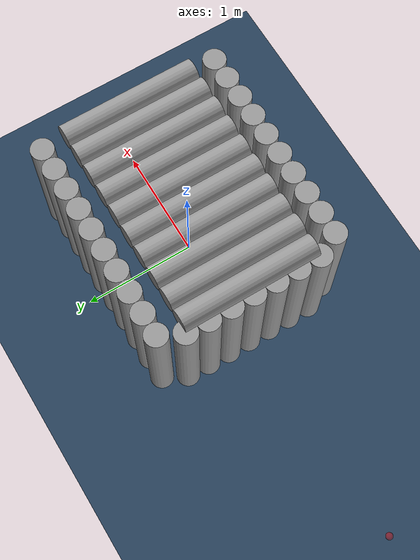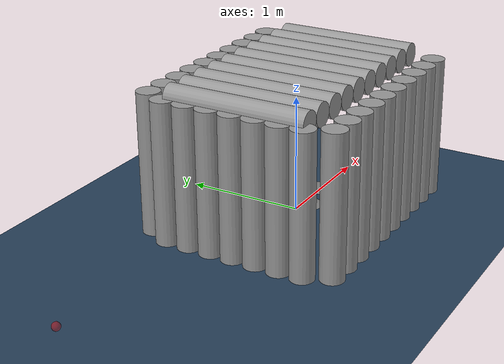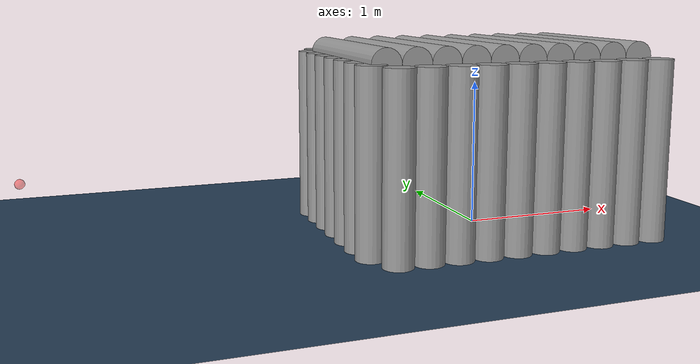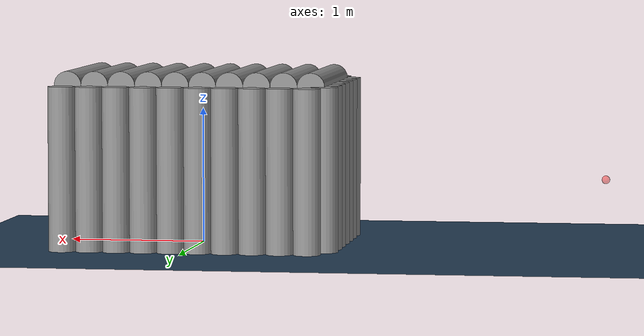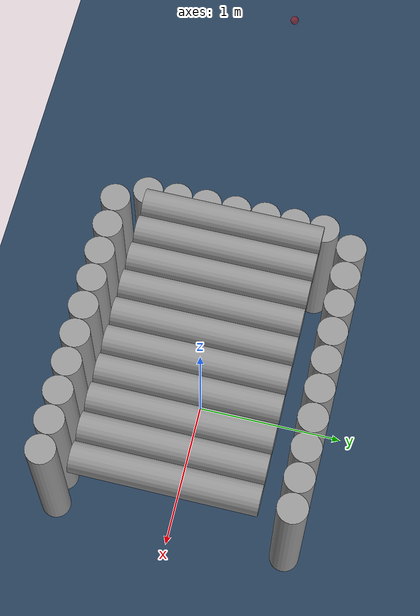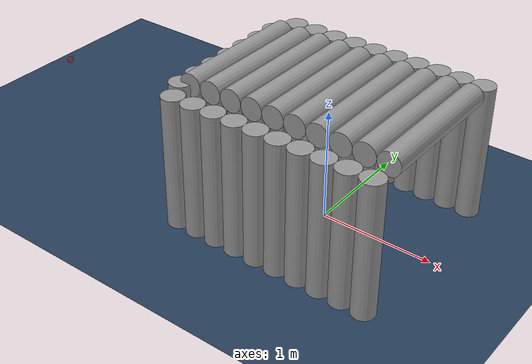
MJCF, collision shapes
<mujoco model="Skydio X2 scene">
  <include file="x2.xml"/>

  <!-- Target sphere -->
  <worldbody>
    <body name="goal" mocap="true" pos="-3 0 0.5">
      <site type="sphere" size=".03" rgba="1 0 0 0.4"  />
    </body>
  </worldbody>

  <!-- Obstacles -->
  <worldbody>
    <body name="frontwall" pos="-1 0 0 " quat="0.707 0 0 0.707">
      <geom name="f0" size="0.1 0.6" type="cylinder" pos="-0.6 0 0.6" rgba ="0.6 0.6 0.6 0.5"/>
      <geom name="f1" size="0.1 0.6" type="cylinder" pos="-0.4 0 0.6" rgba ="0.6 0.6 0.6 0.5"/>
      <geom name="f2" size="0.1 0.6" type="cylinder" pos="-0.2 0 0.6" rgba ="0.6 0.6 0.6 0.5"/>
      <geom name="f3" size="0.1 0.6" type="cylinder" pos="0 0 0.6" rgba ="0.6 0.6 0.6 0.5"/>
      <geom name="f4" size="0.1 0.6" type="cylinder" pos="0.2 0 0.6" rgba ="0.6 0.6 0.6 0.5"/>
      <geom name="f5" size="0.1 0.6" type="cylinder" pos="0.4 0 0.6" rgba ="0.6 0.6 0.6 0.5"/>
      <geom name="f6" size="0.1 0.6" type="cylinder" pos="0.6 0 0.6" rgba ="0.6 0.6 0.6 0.5"/>
    </body>

    <body name="leftwall" pos="-0.30 0.8 0 " quat="1 0 0 0">
      <geom name="l0" size="0.1 0.6" type="cylinder" pos="-0.6 0 0.6" rgba ="0.6 0.6 0.6 0.5"/>
      <geom name="l1" size="0.1 0.6" type="cylinder" pos="-0.4 0 0.6" rgba ="0.6 0.6 0.6 0.5"/>
      <geom name="l2" size="0.1 0.6" type="cylinder" pos="-0.2 0 0.6" rgba ="0.6 0.6 0.6 0.5"/>
      <geom name="l3" size="0.1 0.6" type="cylinder" pos="0 0 0.6" rgba ="0.6 0.6 0.6 0.5"/>
      <geom name="l4" size="0.1 0.6" type="cylinder" pos="0.2 0 0.6" rgba ="0.6 0.6 0.6 0.5"/>
      <geom name="l5" size="0.1 0.6" type="cylinder" pos="0.4 0 0.6" rgba ="0.6 0.6 0.6 0.5"/>
      <geom name="l6" size="0.1 0.6" type="cylinder" pos="0.6 0 0.6" rgba ="0.6 0.6 0.6 0.5"/>
      <geom name="l7" size="0.1 0.6" type="cylinder" pos="0.8 0 0.6" rgba ="0.6 0.6 0.6 0.5"/>
      <geom name="l8" size="0.1 0.6" type="cylinder" pos="1.0 0 0.6" rgba ="0.6 0.6 0.6 0.5"/>
      <geom name="l9" size="0.1 0.6" type="cylinder" pos="1.2 0 0.6" rgba ="0.6 0.6 0.6 0.5"/>
    </body>

    <body name="rightwall" pos="-0.30 -0.8 0 " quat="1 0 0 0">
      <geom name="r0" size="0.1 0.6" type="cylinder" pos="-0.6 0 0.6" rgba ="0.6 0.6 0.6 0.5"/>
      <geom name="r1" size="0.1 0.6" type="cylinder" pos="-0.4 0 0.6" rgba ="0.6 0.6 0.6 0.5"/>
      <geom name="r2" size="0.1 0.6" type="cylinder" pos="-0.2 0 0.6" rgba ="0.6 0.6 0.6 0.5"/>
      <geom name="r3" size="0.1 0.6" type="cylinder" pos="0 0 0.6" rgba ="0.6 0.6 0.6 0.5"/>
      <geom name="r4" size="0.1 0.6" type="cylinder" pos="0.2 0 0.6" rgba ="0.6 0.6 0.6 0.5"/>
      <geom name="r5" size="0.1 0.6" type="cylinder" pos="0.4 0 0.6" rgba ="0.6 0.6 0.6 0.5"/>
      <geom name="r6" size="0.1 0.6" type="cylinder" pos="0.6 0 0.6" rgba ="0.6 0.6 0.6 0.5"/>
      <geom name="r7" size="0.1 0.6" type="cylinder" pos="0.8 0 0.6" rgba ="0.6 0.6 0.6 0.5"/>
      <geom name="r8" size="0.1 0.6" type="cylinder" pos="1.0 0 0.6" rgba ="0.6 0.6 0.6 0.5"/>
      <geom name="r9" size="0.1 0.6" type="cylinder" pos="1.2 0 0.6" rgba ="0.6 0.6 0.6 0.5"/>
    </body>

    <body name="topwall" pos="-0.3 0.6 1.2 " quat="1 1 0 0">
      <geom name="t0" size="0.1 0.6" type="cylinder" pos="-0.6 0 0.6" rgba ="0.6 0.6 0.6 0.5"/>
      <geom name="t1" size="0.1 0.6" type="cylinder" pos="-0.4 0 0.6" rgba ="0.6 0.6 0.6 0.5"/>
      <geom name="t2" size="0.1 0.6" type="cylinder" pos="-0.2 0 0.6" rgba ="0.6 0.6 0.6 0.5"/>
      <geom name="t3" size="0.1 0.6" type="cylinder" pos="0 0 0.6" rgba ="0.6 0.6 0.6 0.5"/>
      <geom name="t4" size="0.1 0.6" type="cylinder" pos="0.2 0 0.6" rgba ="0.6 0.6 0.6 0.5"/>
      <geom name="t5" size="0.1 0.6" type="cylinder" pos="0.4 0 0.6" rgba ="0.6 0.6 0.6 0.5"/>
      <geom name="t6" size="0.1 0.6" type="cylinder" pos="0.6 0 0.6" rgba ="0.6 0.6 0.6 0.5"/>
      <geom name="t7" size="0.1 0.6" type="cylinder" pos="0.8 0 0.6" rgba ="0.6 0.6 0.6 0.5"/>
      <geom name="t8" size="0.1 0.6" type="cylinder" pos="1.0 0 0.6" rgba ="0.6 0.6 0.6 0.5"/>
      <geom name="t9" size="0.1 0.6" type="cylinder" pos="1.2 0 0.6" rgba ="0.6 0.6 0.6 0.5"/>
    </body>
  </worldbody>

  <statistic center="0 0 0.1" extent="0.6" meansize=".05"/>

  <visual>
    <headlight diffuse="0.6 0.6 0.6" ambient="0.3 0.3 0.3" specular="0 0 0"/>
    <rgba haze="0.15 0.25 0.35 1"/>
    <global azimuth="-20" elevation="-20" ellipsoidinertia="true"/>
  </visual>

  <asset>
    <texture type="skybox" builtin="gradient" rgb1="0.3 0.5 0.7" rgb2="0 0 0" width="512" height="3072"/>
    <texture type="2d" name="groundplane" builtin="checker" mark="edge" rgb1="0.2 0.3 0.4" rgb2="0.1 0.2 0.3"
      markrgb="0.8 0.8 0.8" width="300" height="300"/>
    <material name="groundplane" texture="groundplane" texuniform="true" texrepeat="5 5" reflectance="0.2"/>
  </asset>

  <worldbody>
    <light pos="0 0 1.5" dir="0 0 -1" directional="true"/>
    <geom name="floor" size="0 0 0.05" type="plane" material="groundplane"/>
  </worldbody>
</mujoco>

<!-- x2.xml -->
<mujoco model="Skydio X2">
  <compiler autolimits="true" assetdir="assets"/>

  <option timestep="0.01" density="1.225" viscosity="1.8e-5"/>

  <default>
    <default class="x2">
      <geom mass="0"/>
      <motor ctrlrange="0 13"/>
      <mesh scale="0.01 0.01 0.01"/>
      <default class="visual">
        <geom group="2" type="mesh" contype="0" conaffinity="0"/>
      </default>
      <default class="collision">
        <geom group="3" type="box"/>
        <default class="rotor">
          <geom type="ellipsoid" size=".13 .13 .01"/>
        </default>
      </default>
      <site group="5"/>
    </default>
  </default>

  <asset>
    <texture type="2d" file="X2_lowpoly_texture_SpinningProps_1024.png"/>
    <material name="phong3SG" texture="X2_lowpoly_texture_SpinningProps_1024"/>
    <material name="invisible" rgba="0 0 0 0"/>

    <mesh class="x2" file="X2_lowpoly.obj"/>
  </asset>

  <worldbody>
    <light name="spotlight" mode="targetbodycom" target="x2" pos="0 -1 2"/>
    <body name="x2" pos="0 0 0.1" childclass="x2">
      <freejoint/>
      <camera name="track" pos="-1 0 .5" xyaxes="0 -1 0 1 0 2" mode="trackcom"/>
      <site name="imu" pos="0 0 .02"/>
      <geom material="phong3SG" mesh="X2_lowpoly" class="visual" quat="0 0 1 1"/>
      <geom class="collision" size=".06 .027 .02" pos=".04 0 .02"/>
      <geom class="collision" size=".06 .027 .02" pos=".04 0 .06"/>
      <geom class="collision" size=".05 .027 .02" pos="-.07 0 .065"/>
      <geom class="collision" size=".023 .017 .01" pos="-.137 .008 .065" quat="1 0 0 1"/>
      <geom name="rotor1" class="rotor" pos="-.14 -.18 .05" mass=".25"/>
      <geom name="rotor2" class="rotor" pos="-.14 .18 .05" mass=".25"/>
      <geom name="rotor3" class="rotor" pos=".14 .18 .08" mass=".25"/>
      <geom name="rotor4" class="rotor" pos=".14 -.18 .08" mass=".25"/>
      <geom size=".16 .04 .02" pos="0 0 0.02" type="ellipsoid" mass=".325" class="visual" material="invisible"/>
      <site name="thrust1" pos="-.14 -.18 .05"/>
      <site name="thrust2" pos="-.14 .18 .05"/>
      <site name="thrust3" pos=".14 .18 .08"/>
      <site name="thrust4" pos=".14 -.18 .08"/>
      <site name="tracking_site" group="1" type="sphere" size="0.03" rgba="0 1 0 1" pos="0 0 0.07"/>
    </body>
  </worldbody>

  <actuator>
    <motor class="x2" name="thrust1" site="thrust1" gear="0 0 1 0 0 -.0201"/>
    <motor class="x2" name="thrust2" site="thrust2" gear="0 0 1 0 0  .0201"/>
    <motor class="x2" name="thrust3" site="thrust3" gear="0 0 1 0 0  .0201"/>
    <motor class="x2" name="thrust4" site="thrust4" gear="0 0 1 0 0 -.0201"/>
  </actuator>

  <sensor>
    <gyro name="body_gyro" site="imu"/>
    <accelerometer name="body_linacc" site="imu"/>
    <framequat name="body_quat" objtype="site" objname="imu"/>
  </sensor>

  <keyframe>
    <key name="hover" qpos="0 0 .3 1 0 0 0" ctrl="3.2495625 3.2495625 3.2495625 3.2495625"/>
  </keyframe>
</mujoco>
